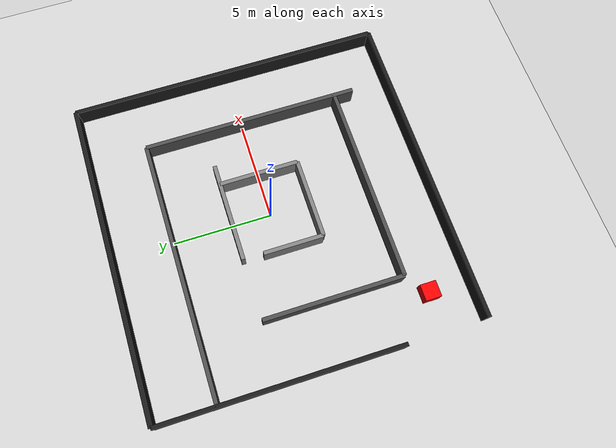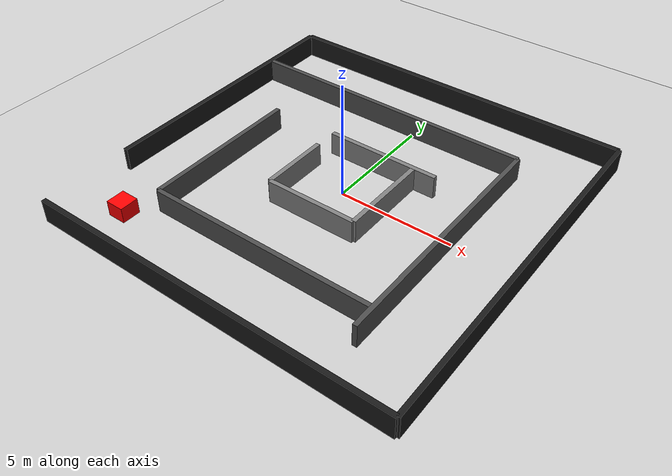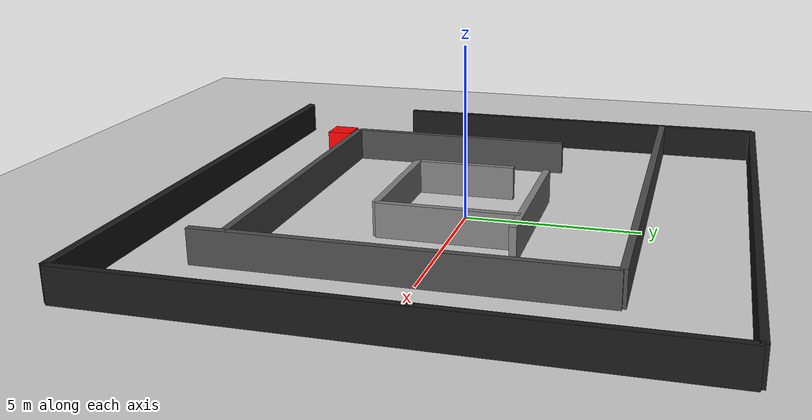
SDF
<?xml version="1.0" ?>
<sdf version="1.8">
  <world name="rescue_world">

    <plugin filename="gz-sim-physics-system" name="gz::sim::systems::Physics"/>
    <plugin filename="gz-sim-scene-broadcaster-system" name="gz::sim::systems::SceneBroadcaster"/>
    <plugin filename="gz-sim-sensors-system" name="gz::sim::systems::Sensors"><render_engine>ogre2</render_engine></plugin>
    <plugin filename="gz-sim-user-commands-system" name="gz::sim::systems::UserCommands"/>

    <light type="directional" name="sun"><cast_shadows>true</cast_shadows><pose>0 0 10 0 0 0</pose><diffuse>0.8 0.8 0.8 1</diffuse><specular>0.2 0.2 0.2 1</specular><attenuation><range>1000</range><constant>0.9</constant><linear>0.01</linear><quadratic>0.001</quadratic></attenuation><direction>-0.5 0.1 -0.9</direction></light>

    <model name="ground_plane"><static>true</static><link name="link"><collision name="collision"><geometry><plane><normal>0 0 1</normal><size>100 100</size></plane></geometry></collision><visual name="visual"><geometry><plane><normal>0 0 1</normal><size>100 100</size></plane></geometry><material><ambient>0.8 0.8 0.8 1</ambient><diffuse>0.8 0.8 0.8 1</diffuse></material></visual></link></model>

    <model name="outer_north"><pose>0 8 0.5 0 0 0</pose><static>true</static><link name="link"><collision name="col"><geometry><box><size>16 0.2 1</size></box></geometry></collision><visual name="vis"><geometry><box><size>16 0.2 1</size></box></geometry><material><ambient>0.1 0.1 0.1 1</ambient></material></visual></link></model>
    <model name="outer_east"><pose>8 0 0.5 0 0 1.5708</pose><static>true</static><link name="link"><collision name="col"><geometry><box><size>16 0.2 1</size></box></geometry></collision><visual name="vis"><geometry><box><size>16 0.2 1</size></box></geometry><material><ambient>0.1 0.1 0.1 1</ambient></material></visual></link></model>
    <model name="outer_south"><pose>0 -8 0.5 0 0 0</pose><static>true</static><link name="link"><collision name="col"><geometry><box><size>16 0.2 1</size></box></geometry></collision><visual name="vis"><geometry><box><size>16 0.2 1</size></box></geometry><material><ambient>0.1 0.1 0.1 1</ambient></material></visual></link></model>
    <model name="outer_west"><pose>-8 2 0.5 0 0 1.5708</pose><static>true</static><link name="link"><collision name="col"><geometry><box><size>12 0.2 1</size></box></geometry></collision><visual name="vis"><geometry><box><size>12 0.2 1</size></box></geometry><material><ambient>0.1 0.1 0.1 1</ambient></material></visual></link></model>

    <model name="mid_north"><pose>-1.5 5 0.5 0 0 0</pose><static>true</static><link name="link"><collision name="col"><geometry><box><size>13 0.2 1</size></box></geometry></collision><visual name="vis"><geometry><box><size>13 0.2 1</size></box></geometry><material><ambient>0.3 0.3 0.3 1</ambient></material></visual></link></model>
    <model name="mid_east"><pose>5 -0.5 0.5 0 0 1.5708</pose><static>true</static><link name="link"><collision name="col"><geometry><box><size>11 0.2 1</size></box></geometry></collision><visual name="vis"><geometry><box><size>11 0.2 1</size></box></geometry><material><ambient>0.3 0.3 0.3 1</ambient></material></visual></link></model>
    <model name="mid_south"><pose>0 -5 0.5 0 0 0</pose><static>true</static><link name="link"><collision name="col"><geometry><box><size>10 0.2 1</size></box></geometry></collision><visual name="vis"><geometry><box><size>10 0.2 1</size></box></geometry><material><ambient>0.3 0.3 0.3 1</ambient></material></visual></link></model>
    <model name="mid_west"><pose>-5 -1.5 0.5 0 0 1.5708</pose><static>true</static><link name="link"><collision name="col"><geometry><box><size>7 0.2 1</size></box></geometry></collision><visual name="vis"><geometry><box><size>7 0.2 1</size></box></geometry><material><ambient>0.3 0.3 0.3 1</ambient></material></visual></link></model>

    <model name="inner_north"><pose>0.5 2 0.5 0 0 0</pose><static>true</static><link name="link"><collision name="col"><geometry><box><size>5 0.2 1</size></box></geometry></collision><visual name="vis"><geometry><box><size>5 0.2 1</size></box></geometry><material><ambient>0.5 0.5 0.5 1</ambient></material></visual></link></model>
    <model name="inner_east"><pose>2 0 0.5 0 0 1.5708</pose><static>true</static><link name="link"><collision name="col"><geometry><box><size>4 0.2 1</size></box></geometry></collision><visual name="vis"><geometry><box><size>4 0.2 1</size></box></geometry><material><ambient>0.5 0.5 0.5 1</ambient></material></visual></link></model>
    <model name="inner_south"><pose>0 -2 0.5 0 0 0</pose><static>true</static><link name="link"><collision name="col"><geometry><box><size>4 0.2 1</size></box></geometry></collision><visual name="vis"><geometry><box><size>4 0.2 1</size></box></geometry><material><ambient>0.5 0.5 0.5 1</ambient></material></visual></link></model>
    <model name="inner_west"><pose>-2 -0.5 0.5 0 0 1.5708</pose><static>true</static><link name="link"><collision name="col"><geometry><box><size>3 0.2 1</size></box></geometry></collision><visual name="vis"><geometry><box><size>3 0.2 1</size></box></geometry><material><ambient>0.5 0.5 0.5 1</ambient></material></visual></link></model>

    <model name="victim_box"><pose>-6 -6 0.25 0 0 0</pose><static>true</static><link name="link"><collision name="col"><geometry><box><size>0.8 0.8 0.8</size></box></geometry></collision><visual name="vis"><geometry><box><size>0.8 0.8 0.8</size></box></geometry><material>
  <ambient>1 0 0 1</ambient>
  <diffuse>1 0 0 1</diffuse>
  <specular>0.3 0 0 1</specular>
</material></visual></link></model>

  </world>
</sdf>
